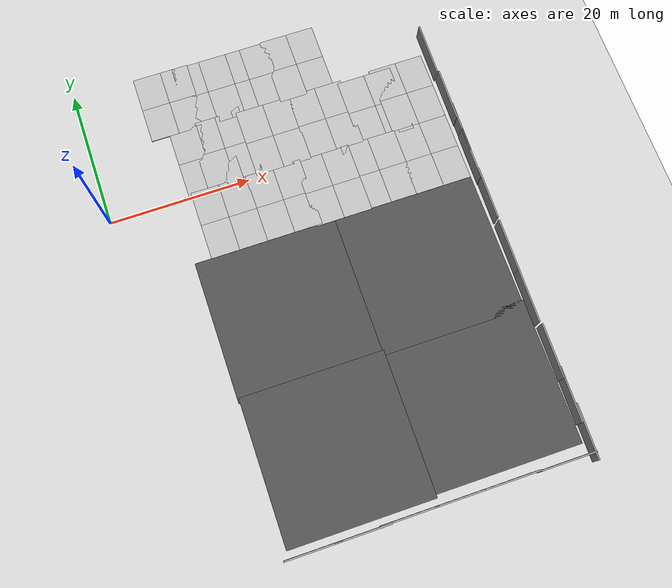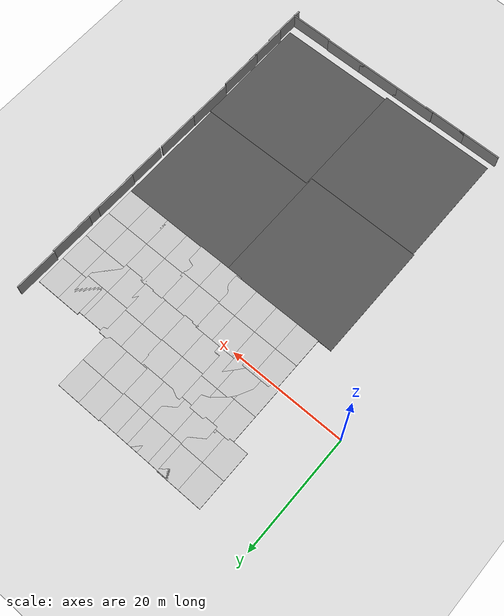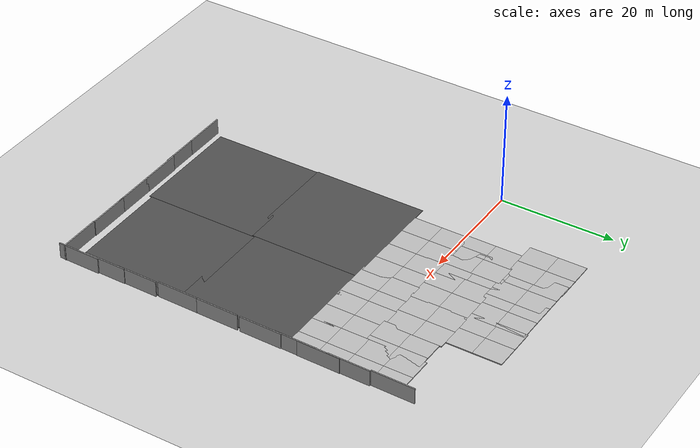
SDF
<sdf version="1.6">
 <world name="default">
  <model name="mud_box_clone_1">
   <static>1</static>
   <link name="link">
    <collision name="collision"><geometry><box><size>8 10 0.2</size></box></geometry></collision>
    <visual name="visual_1">
     <pose>-2 2.5 0 0 -0 0</pose>
     <cast_shadows>0</cast_shadows>
     <geometry><box><size>4 5 0.2</size></box></geometry>
     <material>
      <script>
       <uri>model://mud_box/materials/scripts</uri>
       <uri>model://mud_box/materials/textures</uri>
       <name>vrc/mud</name>
      </script>
     </material>
    </visual>
    <visual name="visual_2">
     <pose>2 2.5 0 0 -0 0</pose>
     <cast_shadows>0</cast_shadows>
     <geometry><box><size>4 5 0.2</size></box></geometry>
     <material>
      <script>
       <uri>model://mud_box/materials/scripts</uri>
       <uri>model://mud_box/materials/textures</uri>
       <name>vrc/mud</name>
      </script>
     </material>
    </visual>
    <visual name="visual_3">
     <pose>2 -2.5 0 0 -0 0</pose>
     <cast_shadows>0</cast_shadows>
     <geometry><box><size>4 5 0.2</size></box></geometry>
     <material>
      <script>
       <uri>model://mud_box/materials/scripts</uri>
       <uri>model://mud_box/materials/textures</uri>
       <name>vrc/mud</name>
      </script>
     </material>
    </visual>
    <visual name="visual_4">
     <pose>-2 -2.5 0 0 -0 0</pose>
     <cast_shadows>0</cast_shadows>
     <geometry><box><size>4 5 0.2</size></box></geometry>
     <material>
      <script>
       <uri>model://mud_box/materials/scripts</uri>
       <uri>model://mud_box/materials/textures</uri>
       <name>vrc/mud</name>
      </script>
     </material>
    </visual>
   </link>
   <pose>25.1643 5.35355 0 0 -0 0</pose>
  </model>
  <model name="mud_box_clone_2">
   <static>1</static>
   <link name="link">
    <collision name="collision"><geometry><box><size>8 10 0.2</size></box></geometry></collision>
    <visual name="visual_1">
     <pose>-2 2.5 0 0 -0 0</pose>
     <cast_shadows>0</cast_shadows>
     <geometry><box><size>4 5 0.2</size></box></geometry>
     <material>
      <script>
       <uri>model://mud_box/materials/scripts</uri>
       <uri>model://mud_box/materials/textures</uri>
       <name>vrc/mud</name>
      </script>
     </material>
    </visual>
    <visual name="visual_2">
     <pose>2 2.5 0 0 -0 0</pose>
     <cast_shadows>0</cast_shadows>
     <geometry><box><size>4 5 0.2</size></box></geometry>
     <material>
      <script>
       <uri>model://mud_box/materials/scripts</uri>
       <uri>model://mud_box/materials/textures</uri>
       <name>vrc/mud</name>
      </script>
     </material>
    </visual>
    <visual name="visual_3">
     <pose>2 -2.5 0 0 -0 0</pose>
     <cast_shadows>0</cast_shadows>
     <geometry><box><size>4 5 0.2</size></box></geometry>
     <material>
      <script>
       <uri>model://mud_box/materials/scripts</uri>
       <uri>model://mud_box/materials/textures</uri>
       <name>vrc/mud</name>
      </script>
     </material>
    </visual>
    <visual name="visual_4">
     <pose>-2 -2.5 0 0 -0 0</pose>
     <cast_shadows>0</cast_shadows>
     <geometry><box><size>4 5 0.2</size></box></geometry>
     <material>
      <script>
       <uri>model://mud_box/materials/scripts</uri>
       <uri>model://mud_box/materials/textures</uri>
       <name>vrc/mud</name>
      </script>
     </material>
    </visual>
   </link>
   <pose>33 5.46909 0 0 -0 0</pose>
  </model>
  <model name="mud_box_clone_3">
   <static>1</static>
   <link name="link">
    <collision name="collision"><geometry><box><size>8 10 0.2</size></box></geometry></collision>
    <visual name="visual_1">
     <pose>-2 2.5 0 0 -0 0</pose>
     <cast_shadows>0</cast_shadows>
     <geometry><box><size>4 5 0.2</size></box></geometry>
     <material>
      <script>
       <uri>model://mud_box/materials/scripts</uri>
       <uri>model://mud_box/materials/textures</uri>
       <name>vrc/mud</name>
      </script>
     </material>
    </visual>
    <visual name="visual_2">
     <pose>2 2.5 0 0 -0 0</pose>
     <cast_shadows>0</cast_shadows>
     <geometry><box><size>4 5 0.2</size></box></geometry>
     <material>
      <script>
       <uri>model://mud_box/materials/scripts</uri>
       <uri>model://mud_box/materials/textures</uri>
       <name>vrc/mud</name>
      </script>
     </material>
    </visual>
    <visual name="visual_3">
     <pose>2 -2.5 0 0 -0 0</pose>
     <cast_shadows>0</cast_shadows>
     <geometry><box><size>4 5 0.2</size></box></geometry>
     <material>
      <script>
       <uri>model://mud_box/materials/scripts</uri>
       <uri>model://mud_box/materials/textures</uri>
       <name>vrc/mud</name>
      </script>
     </material>
    </visual>
    <visual name="visual_4">
     <pose>-2 -2.5 0 0 -0 0</pose>
     <cast_shadows>0</cast_shadows>
     <geometry><box><size>4 5 0.2</size></box></geometry>
     <material>
      <script>
       <uri>model://mud_box/materials/scripts</uri>
       <uri>model://mud_box/materials/textures</uri>
       <name>vrc/mud</name>
      </script>
     </material>
    </visual>
   </link>
   <pose>37.5888 -4.36633 0 0 -0 0</pose>
  </model>
  <model name="mud_box_clone_4">
   <static>1</static>
   <link name="link">
    <collision name="collision"><geometry><box><size>8 10 0.2</size></box></geometry></collision>
    <visual name="visual_1">
     <pose>-2 2.5 0 0 -0 0</pose>
     <cast_shadows>0</cast_shadows>
     <geometry><box><size>4 5 0.2</size></box></geometry>
     <material>
      <script>
       <uri>model://mud_box/materials/scripts</uri>
       <uri>model://mud_box/materials/textures</uri>
       <name>vrc/mud</name>
      </script>
     </material>
    </visual>
    <visual name="visual_2">
     <pose>2 2.5 0 0 -0 0</pose>
     <cast_shadows>0</cast_shadows>
     <geometry><box><size>4 5 0.2</size></box></geometry>
     <material>
      <script>
       <uri>model://mud_box/materials/scripts</uri>
       <uri>model://mud_box/materials/textures</uri>
       <name>vrc/mud</name>
      </script>
     </material>
    </visual>
    <visual name="visual_3">
     <pose>2 -2.5 0 0 -0 0</pose>
     <cast_shadows>0</cast_shadows>
     <geometry><box><size>4 5 0.2</size></box></geometry>
     <material>
      <script>
       <uri>model://mud_box/materials/scripts</uri>
       <uri>model://mud_box/materials/textures</uri>
       <name>vrc/mud</name>
      </script>
     </material>
    </visual>
    <visual name="visual_4">
     <pose>-2 -2.5 0 0 -0 0</pose>
     <cast_shadows>0</cast_shadows>
     <geometry><box><size>4 5 0.2</size></box></geometry>
     <material>
      <script>
       <uri>model://mud_box/materials/scripts</uri>
       <uri>model://mud_box/materials/textures</uri>
       <name>vrc/mud</name>
      </script>
     </material>
    </visual>
   </link>
   <pose>45.301 -4.3748 0 0 -0 0</pose>
  </model>
  <model name="mud_box_clone_5">
   <static>1</static>
   <link name="link">
    <collision name="collision"><geometry><box><size>8 10 0.2</size></box></geometry></collision>
    <visual name="visual_1">
     <pose>-2 2.5 0 0 -0 0</pose>
     <cast_shadows>0</cast_shadows>
     <geometry><box><size>4 5 0.2</size></box></geometry>
     <material>
      <script>
       <uri>model://mud_box/materials/scripts</uri>
       <uri>model://mud_box/materials/textures</uri>
       <name>vrc/mud</name>
      </script>
     </material>
    </visual>
    <visual name="visual_2">
     <pose>2 2.5 0 0 -0 0</pose>
     <cast_shadows>0</cast_shadows>
     <geometry><box><size>4 5 0.2</size></box></geometry>
     <material>
      <script>
       <uri>model://mud_box/materials/scripts</uri>
       <uri>model://mud_box/materials/textures</uri>
       <name>vrc/mud</name>
      </script>
     </material>
    </visual>
    <visual name="visual_3">
     <pose>2 -2.5 0 0 -0 0</pose>
     <cast_shadows>0</cast_shadows>
     <geometry><box><size>4 5 0.2</size></box></geometry>
     <material>
      <script>
       <uri>model://mud_box/materials/scripts</uri>
       <uri>model://mud_box/materials/textures</uri>
       <name>vrc/mud</name>
      </script>
     </material>
    </visual>
    <visual name="visual_4">
     <pose>-2 -2.5 0 0 -0 0</pose>
     <cast_shadows>0</cast_shadows>
     <geometry><box><size>4 5 0.2</size></box></geometry>
     <material>
      <script>
       <uri>model://mud_box/materials/scripts</uri>
       <uri>model://mud_box/materials/textures</uri>
       <name>vrc/mud</name>
      </script>
     </material>
    </visual>
   </link>
   <pose>40.378 5.12316 0 0 -0 0</pose>
  </model>
  <model name="mud_box_clone_6">
   <static>1</static>
   <link name="link">
    <collision name="collision"><geometry><box><size>8 10 0.2</size></box></geometry></collision>
    <visual name="visual_1">
     <pose>-2 2.5 0 0 -0 0</pose>
     <cast_shadows>0</cast_shadows>
     <geometry><box><size>4 5 0.2</size></box></geometry>
     <material>
      <script>
       <uri>model://mud_box/materials/scripts</uri>
       <uri>model://mud_box/materials/textures</uri>
       <name>vrc/mud</name>
      </script>
     </material>
    </visual>
    <visual name="visual_2">
     <pose>2 2.5 0 0 -0 0</pose>
     <cast_shadows>0</cast_shadows>
     <geometry><box><size>4 5 0.2</size></box></geometry>
     <material>
      <script>
       <uri>model://mud_box/materials/scripts</uri>
       <uri>model://mud_box/materials/textures</uri>
       <name>vrc/mud</name>
      </script>
     </material>
    </visual>
    <visual name="visual_3">
     <pose>2 -2.5 0 0 -0 0</pose>
     <cast_shadows>0</cast_shadows>
     <geometry><box><size>4 5 0.2</size></box></geometry>
     <material>
      <script>
       <uri>model://mud_box/materials/scripts</uri>
       <uri>model://mud_box/materials/textures</uri>
       <name>vrc/mud</name>
      </script>
     </material>
    </visual>
    <visual name="visual_4">
     <pose>-2 -2.5 0 0 -0 0</pose>
     <cast_shadows>0</cast_shadows>
     <geometry><box><size>4 5 0.2</size></box></geometry>
     <material>
      <script>
       <uri>model://mud_box/materials/scripts</uri>
       <uri>model://mud_box/materials/textures</uri>
       <name>vrc/mud</name>
      </script>
     </material>
    </visual>
   </link>
   <pose>45.3176 5.55034 0 0 -0 0</pose>
  </model>
  <model name="mud_box_clone_9">
   <static>1</static>
   <link name="link">
    <collision name="collision"><geometry><box><size>8 10 0.2</size></box></geometry></collision>
    <visual name="visual_1">
     <pose>-2 2.5 0 0 -0 0</pose>
     <cast_shadows>0</cast_shadows>
     <geometry><box><size>4 5 0.2</size></box></geometry>
     <material>
      <script>
       <uri>model://mud_box/materials/scripts</uri>
       <uri>model://mud_box/materials/textures</uri>
       <name>vrc/mud</name>
      </script>
     </material>
    </visual>
    <visual name="visual_2">
     <pose>2 2.5 0 0 -0 0</pose>
     <cast_shadows>0</cast_shadows>
     <geometry><box><size>4 5 0.2</size></box></geometry>
     <material>
      <script>
       <uri>model://mud_box/materials/scripts</uri>
       <uri>model://mud_box/materials/textures</uri>
       <name>vrc/mud</name>
      </script>
     </material>
    </visual>
    <visual name="visual_3">
     <pose>2 -2.5 0 0 -0 0</pose>
     <cast_shadows>0</cast_shadows>
     <geometry><box><size>4 5 0.2</size></box></geometry>
     <material>
      <script>
       <uri>model://mud_box/materials/scripts</uri>
       <uri>model://mud_box/materials/textures</uri>
       <name>vrc/mud</name>
      </script>
     </material>
    </visual>
    <visual name="visual_4">
     <pose>-2 -2.5 0 0 -0 0</pose>
     <cast_shadows>0</cast_shadows>
     <geometry><box><size>4 5 0.2</size></box></geometry>
     <material>
      <script>
       <uri>model://mud_box/materials/scripts</uri>
       <uri>model://mud_box/materials/textures</uri>
       <name>vrc/mud</name>
      </script>
     </material>
    </visual>
   </link>
   <pose>31.7971 14.9894 0 0 -0 0</pose>
  </model>
  <model name="mud_box_clone_10">
   <static>1</static>
   <link name="link">
    <collision name="collision"><geometry><box><size>8 10 0.2</size></box></geometry></collision>
    <visual name="visual_1">
     <pose>-2 2.5 0 0 -0 0</pose>
     <cast_shadows>0</cast_shadows>
     <geometry><box><size>4 5 0.2</size></box></geometry>
     <material>
      <script>
       <uri>model://mud_box/materials/scripts</uri>
       <uri>model://mud_box/materials/textures</uri>
       <name>vrc/mud</name>
      </script>
     </material>
    </visual>
    <visual name="visual_2">
     <pose>2 2.5 0 0 -0 0</pose>
     <cast_shadows>0</cast_shadows>
     <geometry><box><size>4 5 0.2</size></box></geometry>
     <material>
      <script>
       <uri>model://mud_box/materials/scripts</uri>
       <uri>model://mud_box/materials/textures</uri>
       <name>vrc/mud</name>
      </script>
     </material>
    </visual>
    <visual name="visual_3">
     <pose>2 -2.5 0 0 -0 0</pose>
     <cast_shadows>0</cast_shadows>
     <geometry><box><size>4 5 0.2</size></box></geometry>
     <material>
      <script>
       <uri>model://mud_box/materials/scripts</uri>
       <uri>model://mud_box/materials/textures</uri>
       <name>vrc/mud</name>
      </script>
     </material>
    </visual>
    <visual name="visual_4">
     <pose>-2 -2.5 0 0 -0 0</pose>
     <cast_shadows>0</cast_shadows>
     <geometry><box><size>4 5 0.2</size></box></geometry>
     <material>
      <script>
       <uri>model://mud_box/materials/scripts</uri>
       <uri>model://mud_box/materials/textures</uri>
       <name>vrc/mud</name>
      </script>
     </material>
    </visual>
   </link>
   <pose>24.6123 14.8055 0 0 -0 0</pose>
  </model>
  <model name="mud_box_clone_11">
   <static>1</static>
   <link name="link">
    <collision name="collision"><geometry><box><size>8 10 0.2</size></box></geometry></collision>
    <visual name="visual_1">
     <pose>-2 2.5 0 0 -0 0</pose>
     <cast_shadows>0</cast_shadows>
     <geometry><box><size>4 5 0.2</size></box></geometry>
     <material>
      <script>
       <uri>model://mud_box/materials/scripts</uri>
       <uri>model://mud_box/materials/textures</uri>
       <name>vrc/mud</name>
      </script>
     </material>
    </visual>
    <visual name="visual_2">
     <pose>2 2.5 0 0 -0 0</pose>
     <cast_shadows>0</cast_shadows>
     <geometry><box><size>4 5 0.2</size></box></geometry>
     <material>
      <script>
       <uri>model://mud_box/materials/scripts</uri>
       <uri>model://mud_box/materials/textures</uri>
       <name>vrc/mud</name>
      </script>
     </material>
    </visual>
    <visual name="visual_3">
     <pose>2 -2.5 0 0 -0 0</pose>
     <cast_shadows>0</cast_shadows>
     <geometry><box><size>4 5 0.2</size></box></geometry>
     <material>
      <script>
       <uri>model://mud_box/materials/scripts</uri>
       <uri>model://mud_box/materials/textures</uri>
       <name>vrc/mud</name>
      </script>
     </material>
    </visual>
    <visual name="visual_4">
     <pose>-2 -2.5 0 0 -0 0</pose>
     <cast_shadows>0</cast_shadows>
     <geometry><box><size>4 5 0.2</size></box></geometry>
     <material>
      <script>
       <uri>model://mud_box/materials/scripts</uri>
       <uri>model://mud_box/materials/textures</uri>
       <name>vrc/mud</name>
      </script>
     </material>
    </visual>
   </link>
   <pose>18.4493 14.8114 0 0 -0 0</pose>
  </model>
  <model name="mud_box_clone_12">
   <static>1</static>
   <link name="link">
    <collision name="collision"><geometry><box><size>8 10 0.2</size></box></geometry></collision>
    <visual name="visual_1">
     <pose>-2 2.5 0 0 -0 0</pose>
     <cast_shadows>0</cast_shadows>
     <geometry><box><size>4 5 0.2</size></box></geometry>
     <material>
      <script>
       <uri>model://mud_box/materials/scripts</uri>
       <uri>model://mud_box/materials/textures</uri>
       <name>vrc/mud</name>
      </script>
     </material>
    </visual>
    <visual name="visual_2">
     <pose>2 2.5 0 0 -0 0</pose>
     <cast_shadows>0</cast_shadows>
     <geometry><box><size>4 5 0.2</size></box></geometry>
     <material>
      <script>
       <uri>model://mud_box/materials/scripts</uri>
       <uri>model://mud_box/materials/textures</uri>
       <name>vrc/mud</name>
      </script>
     </material>
    </visual>
    <visual name="visual_3">
     <pose>2 -2.5 0 0 -0 0</pose>
     <cast_shadows>0</cast_shadows>
     <geometry><box><size>4 5 0.2</size></box></geometry>
     <material>
      <script>
       <uri>model://mud_box/materials/scripts</uri>
       <uri>model://mud_box/materials/textures</uri>
       <name>vrc/mud</name>
      </script>
     </material>
    </visual>
    <visual name="visual_4">
     <pose>-2 -2.5 0 0 -0 0</pose>
     <cast_shadows>0</cast_shadows>
     <geometry><box><size>4 5 0.2</size></box></geometry>
     <material>
      <script>
       <uri>model://mud_box/materials/scripts</uri>
       <uri>model://mud_box/materials/textures</uri>
       <name>vrc/mud</name>
      </script>
     </material>
    </visual>
   </link>
   <pose>12.7203 14.918 0 0 -0 0</pose>
  </model>
  <model name="ground_plane">
   <static>1</static>
   <link name="link">
    <collision name="collision">
     <geometry><plane><normal>0 0 1</normal><size>100 100</size></plane></geometry>
     <surface><friction><ode><mu>100</mu><mu2>50</mu2></ode></friction></surface>
    </collision>
    <visual name="visual">
     <cast_shadows>0</cast_shadows>
     <geometry><plane><normal>0 0 1</normal><size>100 100</size></plane></geometry>
     <material>
      <script><uri>file://media/materials/scripts/gazebo.material</uri><name>Gazebo/Grey</name></script>
     </material>
    </visual>
   </link>
  </model>
  <model name="grey_wall_clone_21">
   <static>1</static>
   <link name="link">
    <pose>0 0 1.4 0 -0 0</pose>
    <collision name="collision"><geometry><box><size>7.5 0.2 2.8</size></box></geometry></collision>
    <visual name="visual">
     <cast_shadows>0</cast_shadows>
     <geometry><box><size>7.5 0.2 2.8</size></box></geometry>
     <material>
      <script>
       <uri>model://grey_wall/materials/scripts</uri>
       <uri>model://grey_wall/materials/textures</uri>
       <name>vrc/grey_wall</name>
      </script>
     </material>
    </visual>
   </link>
   <pose>12.6343 -49.5987 0 0 -0 0</pose>
  </model>
  <model name="grey_wall_clone_22">
   <static>1</static>
   <link name="link">
    <pose>0 0 1.4 0 -0 0</pose>
    <collision name="collision"><geometry><box><size>7.5 0.2 2.8</size></box></geometry></collision>
    <visual name="visual">
     <cast_shadows>0</cast_shadows>
     <geometry><box><size>7.5 0.2 2.8</size></box></geometry>
     <material>
      <script>
       <uri>model://grey_wall/materials/scripts</uri>
       <uri>model://grey_wall/materials/textures</uri>
       <name>vrc/grey_wall</name>
      </script>
     </material>
    </visual>
   </link>
   <pose>19.1299 -49.5987 0 0 -0 0</pose>
  </model>
  <model name="grey_wall_clone_23">
   <static>1</static>
   <link name="link">
    <pose>0 0 1.4 0 -0 0</pose>
    <collision name="collision"><geometry><box><size>7.5 0.2 2.8</size></box></geometry></collision>
    <visual name="visual">
     <cast_shadows>0</cast_shadows>
     <geometry><box><size>7.5 0.2 2.8</size></box></geometry>
     <material>
      <script>
       <uri>model://grey_wall/materials/scripts</uri>
       <uri>model://grey_wall/materials/textures</uri>
       <name>vrc/grey_wall</name>
      </script>
     </material>
    </visual>
   </link>
   <pose>25.1976 -49.4941 0 0 -0 0</pose>
  </model>
  <model name="grey_wall_clone_24">
   <static>1</static>
   <link name="link">
    <pose>0 0 1.4 0 -0 0</pose>
    <collision name="collision"><geometry><box><size>7.5 0.2 2.8</size></box></geometry></collision>
    <visual name="visual">
     <cast_shadows>0</cast_shadows>
     <geometry><box><size>7.5 0.2 2.8</size></box></geometry>
     <material>
      <script>
       <uri>model://grey_wall/materials/scripts</uri>
       <uri>model://grey_wall/materials/textures</uri>
       <name>vrc/grey_wall</name>
      </script>
     </material>
    </visual>
   </link>
   <pose>32.2181 -49.4941 0 0 -0 0</pose>
  </model>
  <model name="grey_wall_clone_25">
   <static>1</static>
   <link name="link">
    <pose>0 0 1.4 0 -0 0</pose>
    <collision name="collision"><geometry><box><size>7.5 0.2 2.8</size></box></geometry></collision>
    <visual name="visual">
     <cast_shadows>0</cast_shadows>
     <geometry><box><size>7.5 0.2 2.8</size></box></geometry>
     <material>
      <script>
       <uri>model://grey_wall/materials/scripts</uri>
       <uri>model://grey_wall/materials/textures</uri>
       <name>vrc/grey_wall</name>
      </script>
     </material>
    </visual>
   </link>
   <pose>38.8183 -49.4941 0 0 -0 0</pose>
  </model>
  <model name="grey_wall_clone_26">
   <static>1</static>
   <link name="link">
    <pose>0 0 1.4 0 -0 0</pose>
    <collision name="collision"><geometry><box><size>7.5 0.2 2.8</size></box></geometry></collision>
    <visual name="visual">
     <cast_shadows>0</cast_shadows>
     <geometry><box><size>7.5 0.2 2.8</size></box></geometry>
     <material>
      <script>
       <uri>model://grey_wall/materials/scripts</uri>
       <uri>model://grey_wall/materials/textures</uri>
       <name>vrc/grey_wall</name>
      </script>
     </material>
    </visual>
   </link>
   <pose>46.2687 -49.5987 0 0 -0 0</pose>
  </model>
  <model name="grey_wall_clone_27_clone_18">
   <static>1</static>
   <link name="link">
    <pose>0 0 1.4 0 -0 0</pose>
    <collision name="collision"><geometry><box><size>7.5 0.2 2.8</size></box></geometry></collision>
    <visual name="visual">
     <cast_shadows>0</cast_shadows>
     <geometry><box><size>7.5 0.2 2.8</size></box></geometry>
     <material>
      <script>
       <uri>model://grey_wall/materials/scripts</uri>
       <uri>model://grey_wall/materials/textures</uri>
       <name>vrc/grey_wall</name>
      </script>
     </material>
    </visual>
   </link>
   <pose>49.8903 9.87447 0 0 0 -1.5859</pose>
  </model>
  <model name="grey_wall_clone_27_clone_19">
   <static>1</static>
   <link name="link">
    <pose>0 0 1.4 0 -0 0</pose>
    <collision name="collision"><geometry><box><size>7.5 0.2 2.8</size></box></geometry></collision>
    <visual name="visual">
     <cast_shadows>0</cast_shadows>
     <geometry><box><size>7.5 0.2 2.8</size></box></geometry>
     <material>
      <script>
       <uri>model://grey_wall/materials/scripts</uri>
       <uri>model://grey_wall/materials/textures</uri>
       <name>vrc/grey_wall</name>
      </script>
     </material>
    </visual>
   </link>
   <pose>50.0049 2.36453 0 0 0 -1.5859</pose>
  </model>
  <model name="grey_wall_clone_27_clone_20">
   <static>1</static>
   <link name="link">
    <pose>0 0 1.4 0 -0 0</pose>
    <collision name="collision"><geometry><box><size>7.5 0.2 2.8</size></box></geometry></collision>
    <visual name="visual">
     <cast_shadows>0</cast_shadows>
     <geometry><box><size>7.5 0.2 2.8</size></box></geometry>
     <material>
      <script>
       <uri>model://grey_wall/materials/scripts</uri>
       <uri>model://grey_wall/materials/textures</uri>
       <name>vrc/grey_wall</name>
      </script>
     </material>
    </visual>
   </link>
   <pose>49.8903 -6.96394 0 0 0 -1.5859</pose>
  </model>
  <model name="grey_wall_clone_27_clone_21">
   <static>1</static>
   <link name="link">
    <pose>0 0 1.4 0 -0 0</pose>
    <collision name="collision"><geometry><box><size>7.5 0.2 2.8</size></box></geometry></collision>
    <visual name="visual">
     <cast_shadows>0</cast_shadows>
     <geometry><box><size>7.5 0.2 2.8</size></box></geometry>
     <material>
      <script>
       <uri>model://grey_wall/materials/scripts</uri>
       <uri>model://grey_wall/materials/textures</uri>
       <name>vrc/grey_wall</name>
      </script>
     </material>
    </visual>
   </link>
   <pose>50.0049 -2.84416 0 0 0 -1.5859</pose>
  </model>
  <model name="grey_wall_clone_27_clone_22">
   <static>1</static>
   <link name="link">
    <pose>0 0 1.4 0 -0 0</pose>
    <collision name="collision"><geometry><box><size>7.5 0.2 2.8</size></box></geometry></collision>
    <visual name="visual">
     <cast_shadows>0</cast_shadows>
     <geometry><box><size>7.5 0.2 2.8</size></box></geometry>
     <material>
      <script>
       <uri>model://grey_wall/materials/scripts</uri>
       <uri>model://grey_wall/materials/textures</uri>
       <name>vrc/grey_wall</name>
      </script>
     </material>
    </visual>
   </link>
   <pose>49.8903 -13.1425 0 0 0 -1.5859</pose>
  </model>
  <model name="grey_wall_clone_27_clone_23">
   <static>1</static>
   <link name="link">
    <pose>0 0 1.4 0 -0 0</pose>
    <collision name="collision"><geometry><box><size>7.5 0.2 2.8</size></box></geometry></collision>
    <visual name="visual">
     <cast_shadows>0</cast_shadows>
     <geometry><box><size>7.5 0.2 2.8</size></box></geometry>
     <material>
      <script>
       <uri>model://grey_wall/materials/scripts</uri>
       <uri>model://grey_wall/materials/textures</uri>
       <name>vrc/grey_wall</name>
      </script>
     </material>
    </visual>
   </link>
   <pose>49.7668 -21.0184 0 0 0 -1.5859</pose>
  </model>
  <model name="grey_wall_clone_27_clone_24">
   <static>1</static>
   <link name="link">
    <pose>0 0 1.4 0 -0 0</pose>
    <collision name="collision"><geometry><box><size>7.5 0.2 2.8</size></box></geometry></collision>
    <visual name="visual">
     <cast_shadows>0</cast_shadows>
     <geometry><box><size>7.5 0.2 2.8</size></box></geometry>
     <material>
      <script>
       <uri>model://grey_wall/materials/scripts</uri>
       <uri>model://grey_wall/materials/textures</uri>
       <name>vrc/grey_wall</name>
      </script>
     </material>
    </visual>
   </link>
   <pose>49.6434 -28.2836 0 0 0 -1.5859</pose>
  </model>
  <model name="grey_wall_clone_27_clone_25">
   <static>1</static>
   <link name="link">
    <pose>0 0 1.4 0 -0 0</pose>
    <collision name="collision"><geometry><box><size>7.5 0.2 2.8</size></box></geometry></collision>
    <visual name="visual">
     <cast_shadows>0</cast_shadows>
     <geometry><box><size>7.5 0.2 2.8</size></box></geometry>
     <material>
      <script>
       <uri>model://grey_wall/materials/scripts</uri>
       <uri>model://grey_wall/materials/textures</uri>
       <name>vrc/grey_wall</name>
      </script>
     </material>
    </visual>
   </link>
   <pose>49.7668 -36.036 0 0 0 -1.5859</pose>
  </model>
  <model name="grey_wall_clone_27_clone_26">
   <static>1</static>
   <link name="link">
    <pose>0 0 1.4 0 -0 0</pose>
    <collision name="collision"><geometry><box><size>7.5 0.2 2.8</size></box></geometry></collision>
    <visual name="visual">
     <cast_shadows>0</cast_shadows>
     <geometry><box><size>7.5 0.2 2.8</size></box></geometry>
     <material>
      <script>
       <uri>model://grey_wall/materials/scripts</uri>
       <uri>model://grey_wall/materials/textures</uri>
       <name>vrc/grey_wall</name>
      </script>
     </material>
    </visual>
   </link>
   <pose>49.7668 -41.9721 0 0 0 -1.5859</pose>
  </model>
  <model name="grey_wall_clone_27_clone_27">
   <static>1</static>
   <link name="link">
    <pose>0 0 1.4 0 -0 0</pose>
    <collision name="collision"><geometry><box><size>7.5 0.2 2.8</size></box></geometry></collision>
    <visual name="visual">
     <cast_shadows>0</cast_shadows>
     <geometry><box><size>7.5 0.2 2.8</size></box></geometry>
     <material>
      <script>
       <uri>model://grey_wall/materials/scripts</uri>
       <uri>model://grey_wall/materials/textures</uri>
       <name>vrc/grey_wall</name>
      </script>
     </material>
    </visual>
   </link>
   <pose>49.8903 -46.9406 0 0 0 -1.5859</pose>
  </model>
  <model name="asphalt_plane_clone_clone_12">
   <static>1</static>
   <link name="link">
    <collision name="collision"><geometry><box><size>20 20 0.1</size></box></geometry></collision>
    <visual name="visual">
     <cast_shadows>0</cast_shadows>
     <geometry><box><size>20 20 0.1</size></box></geometry>
     <material>
      <script>
       <uri>model://asphalt_plane/materials/scripts</uri>
       <uri>model://asphalt_plane/materials/textures</uri>
       <name>vrc/asphalt</name>
      </script>
     </material>
    </visual>
   </link>
   <pose>19.3254 -19.2709 0 0 -0 0</pose>
  </model>
  <model name="asphalt_plane_clone_clone_13">
   <static>1</static>
   <link name="link">
    <collision name="collision"><geometry><box><size>20 20 0.1</size></box></geometry></collision>
    <visual name="visual">
     <cast_shadows>0</cast_shadows>
     <geometry><box><size>20 20 0.1</size></box></geometry>
     <material>
      <script>
       <uri>model://asphalt_plane/materials/scripts</uri>
       <uri>model://asphalt_plane/materials/textures</uri>
       <name>vrc/asphalt</name>
      </script>
     </material>
    </visual>
   </link>
   <pose>39.3109 -19.2823 0 0 -0 0</pose>
  </model>
  <model name="asphalt_plane_clone_clone_14">
   <static>1</static>
   <link name="link">
    <collision name="collision"><geometry><box><size>20 20 0.1</size></box></geometry></collision>
    <visual name="visual">
     <cast_shadows>0</cast_shadows>
     <geometry><box><size>20 20 0.1</size></box></geometry>
     <material>
      <script>
       <uri>model://asphalt_plane/materials/scripts</uri>
       <uri>model://asphalt_plane/materials/textures</uri>
       <name>vrc/asphalt</name>
      </script>
     </material>
    </visual>
   </link>
   <pose>39.4956 -38.1066 0 0 -0 0</pose>
  </model>
  <model name="asphalt_plane_clone_clone_15">
   <static>1</static>
   <link name="link">
    <collision name="collision"><geometry><box><size>20 20 0.1</size></box></geometry></collision>
    <visual name="visual">
     <cast_shadows>0</cast_shadows>
     <geometry><box><size>20 20 0.1</size></box></geometry>
     <material>
      <script>
       <uri>model://asphalt_plane/materials/scripts</uri>
       <uri>model://asphalt_plane/materials/textures</uri>
       <name>vrc/asphalt</name>
      </script>
     </material>
    </visual>
   </link>
   <pose>19.5067 -38.5483 0 0 -0 0</pose>
  </model>
  <model name="mud_box_clone_4_clone_2">
   <static>1</static>
   <link name="link">
    <collision name="collision"><geometry><box><size>8 10 0.2</size></box></geometry></collision>
    <visual name="visual_1">
     <pose>-2 2.5 0 0 -0 0</pose>
     <cast_shadows>0</cast_shadows>
     <geometry><box><size>4 5 0.2</size></box></geometry>
     <material>
      <script>
       <uri>model://mud_box/materials/scripts</uri>
       <uri>model://mud_box/materials/textures</uri>
       <name>vrc/mud</name>
      </script>
     </material>
    </visual>
    <visual name="visual_2">
     <pose>2 2.5 0 0 -0 0</pose>
     <cast_shadows>0</cast_shadows>
     <geometry><box><size>4 5 0.2</size></box></geometry>
     <material>
      <script>
       <uri>model://mud_box/materials/scripts</uri>
       <uri>model://mud_box/materials/textures</uri>
       <name>vrc/mud</name>
      </script>
     </material>
    </visual>
    <visual name="visual_3">
     <pose>2 -2.5 0 0 -0 0</pose>
     <cast_shadows>0</cast_shadows>
     <geometry><box><size>4 5 0.2</size></box></geometry>
     <material>
      <script>
       <uri>model://mud_box/materials/scripts</uri>
       <uri>model://mud_box/materials/textures</uri>
       <name>vrc/mud</name>
      </script>
     </material>
    </visual>
    <visual name="visual_4">
     <pose>-2 -2.5 0 0 -0 0</pose>
     <cast_shadows>0</cast_shadows>
     <geometry><box><size>4 5 0.2</size></box></geometry>
     <material>
      <script>
       <uri>model://mud_box/materials/scripts</uri>
       <uri>model://mud_box/materials/textures</uri>
       <name>vrc/mud</name>
      </script>
     </material>
    </visual>
   </link>
   <pose>15.6713 -4.31312 0 0 -0 0</pose>
  </model>
  <model name="mud_box_clone_4_clone_3">
   <static>1</static>
   <link name="link">
    <collision name="collision"><geometry><box><size>8 10 0.2</size></box></geometry></collision>
    <visual name="visual_1">
     <pose>-2 2.5 0 0 -0 0</pose>
     <cast_shadows>0</cast_shadows>
     <geometry><box><size>4 5 0.2</size></box></geometry>
     <material>
      <script>
       <uri>model://mud_box/materials/scripts</uri>
       <uri>model://mud_box/materials/textures</uri>
       <name>vrc/mud</name>
      </script>
     </material>
    </visual>
    <visual name="visual_2">
     <pose>2 2.5 0 0 -0 0</pose>
     <cast_shadows>0</cast_shadows>
     <geometry><box><size>4 5 0.2</size></box></geometry>
     <material>
      <script>
       <uri>model://mud_box/materials/scripts</uri>
       <uri>model://mud_box/materials/textures</uri>
       <name>vrc/mud</name>
      </script>
     </material>
    </visual>
    <visual name="visual_3">
     <pose>2 -2.5 0 0 -0 0</pose>
     <cast_shadows>0</cast_shadows>
     <geometry><box><size>4 5 0.2</size></box></geometry>
     <material>
      <script>
       <uri>model://mud_box/materials/scripts</uri>
       <uri>model://mud_box/materials/textures</uri>
       <name>vrc/mud</name>
      </script>
     </material>
    </visual>
    <visual name="visual_4">
     <pose>-2 -2.5 0 0 -0 0</pose>
     <cast_shadows>0</cast_shadows>
     <geometry><box><size>4 5 0.2</size></box></geometry>
     <material>
      <script>
       <uri>model://mud_box/materials/scripts</uri>
       <uri>model://mud_box/materials/textures</uri>
       <name>vrc/mud</name>
      </script>
     </material>
    </visual>
   </link>
   <pose>23.551 -4.30711 0 0 -0 0</pose>
  </model>
  <model name="mud_box_clone_4_clone_4">
   <static>1</static>
   <link name="link">
    <collision name="collision"><geometry><box><size>8 10 0.2</size></box></geometry></collision>
    <visual name="visual_1">
     <pose>-2 2.5 0 0 -0 0</pose>
     <cast_shadows>0</cast_shadows>
     <geometry><box><size>4 5 0.2</size></box></geometry>
     <material>
      <script>
       <uri>model://mud_box/materials/scripts</uri>
       <uri>model://mud_box/materials/textures</uri>
       <name>vrc/mud</name>
      </script>
     </material>
    </visual>
    <visual name="visual_2">
     <pose>2 2.5 0 0 -0 0</pose>
     <cast_shadows>0</cast_shadows>
     <geometry><box><size>4 5 0.2</size></box></geometry>
     <material>
      <script>
       <uri>model://mud_box/materials/scripts</uri>
       <uri>model://mud_box/materials/textures</uri>
       <name>vrc/mud</name>
      </script>
     </material>
    </visual>
    <visual name="visual_3">
     <pose>2 -2.5 0 0 -0 0</pose>
     <cast_shadows>0</cast_shadows>
     <geometry><box><size>4 5 0.2</size></box></geometry>
     <material>
      <script>
       <uri>model://mud_box/materials/scripts</uri>
       <uri>model://mud_box/materials/textures</uri>
       <name>vrc/mud</name>
      </script>
     </material>
    </visual>
    <visual name="visual_4">
     <pose>-2 -2.5 0 0 -0 0</pose>
     <cast_shadows>0</cast_shadows>
     <geometry><box><size>4 5 0.2</size></box></geometry>
     <material>
      <script>
       <uri>model://mud_box/materials/scripts</uri>
       <uri>model://mud_box/materials/textures</uri>
       <name>vrc/mud</name>
      </script>
     </material>
    </visual>
   </link>
   <pose>30.6905 -4.46419 0 0 -0 0</pose>
  </model>
  <model name="mud_box_clone_1_clone">
   <static>1</static>
   <link name="link">
    <collision name="collision"><geometry><box><size>8 10 0.2</size></box></geometry></collision>
    <visual name="visual_1">
     <pose>-2 2.5 0 0 -0 0</pose>
     <cast_shadows>0</cast_shadows>
     <geometry><box><size>4 5 0.2</size></box></geometry>
     <material>
      <script>
       <uri>model://mud_box/materials/scripts</uri>
       <uri>model://mud_box/materials/textures</uri>
       <name>vrc/mud</name>
      </script>
     </material>
    </visual>
    <visual name="visual_2">
     <pose>2 2.5 0 0 -0 0</pose>
     <cast_shadows>0</cast_shadows>
     <geometry><box><size>4 5 0.2</size></box></geometry>
     <material>
      <script>
       <uri>model://mud_box/materials/scripts</uri>
       <uri>model://mud_box/materials/textures</uri>
       <name>vrc/mud</name>
      </script>
     </material>
    </visual>
    <visual name="visual_3">
     <pose>2 -2.5 0 0 -0 0</pose>
     <cast_shadows>0</cast_shadows>
     <geometry><box><size>4 5 0.2</size></box></geometry>
     <material>
      <script>
       <uri>model://mud_box/materials/scripts</uri>
       <uri>model://mud_box/materials/textures</uri>
       <name>vrc/mud</name>
      </script>
     </material>
    </visual>
    <visual name="visual_4">
     <pose>-2 -2.5 0 0 -0 0</pose>
     <cast_shadows>0</cast_shadows>
     <geometry><box><size>4 5 0.2</size></box></geometry>
     <material>
      <script>
       <uri>model://mud_box/materials/scripts</uri>
       <uri>model://mud_box/materials/textures</uri>
       <name>vrc/mud</name>
      </script>
     </material>
    </visual>
   </link>
   <pose>15.3021 5.2473 0 0 -0 0</pose>
  </model>
  <model name="mud_box_clone_1_clone_0">
   <static>1</static>
   <link name="link">
    <collision name="collision"><geometry><box><size>8 10 0.2</size></box></geometry></collision>
    <visual name="visual_1">
     <pose>-2 2.5 0 0 -0 0</pose>
     <cast_shadows>0</cast_shadows>
     <geometry><box><size>4 5 0.2</size></box></geometry>
     <material>
      <script>
       <uri>model://mud_box/materials/scripts</uri>
       <uri>model://mud_box/materials/textures</uri>
       <name>vrc/mud</name>
      </script>
     </material>
    </visual>
    <visual name="visual_2">
     <pose>2 2.5 0 0 -0 0</pose>
     <cast_shadows>0</cast_shadows>
     <geometry><box><size>4 5 0.2</size></box></geometry>
     <material>
      <script>
       <uri>model://mud_box/materials/scripts</uri>
       <uri>model://mud_box/materials/textures</uri>
       <name>vrc/mud</name>
      </script>
     </material>
    </visual>
    <visual name="visual_3">
     <pose>2 -2.5 0 0 -0 0</pose>
     <cast_shadows>0</cast_shadows>
     <geometry><box><size>4 5 0.2</size></box></geometry>
     <material>
      <script>
       <uri>model://mud_box/materials/scripts</uri>
       <uri>model://mud_box/materials/textures</uri>
       <name>vrc/mud</name>
      </script>
     </material>
    </visual>
    <visual name="visual_4">
     <pose>-2 -2.5 0 0 -0 0</pose>
     <cast_shadows>0</cast_shadows>
     <geometry><box><size>4 5 0.2</size></box></geometry>
     <material>
      <script>
       <uri>model://mud_box/materials/scripts</uri>
       <uri>model://mud_box/materials/textures</uri>
       <name>vrc/mud</name>
      </script>
     </material>
    </visual>
   </link>
   <pose>18.1419 5.66822 0 0 -0 0</pose>
  </model>
 </world>
</sdf>
